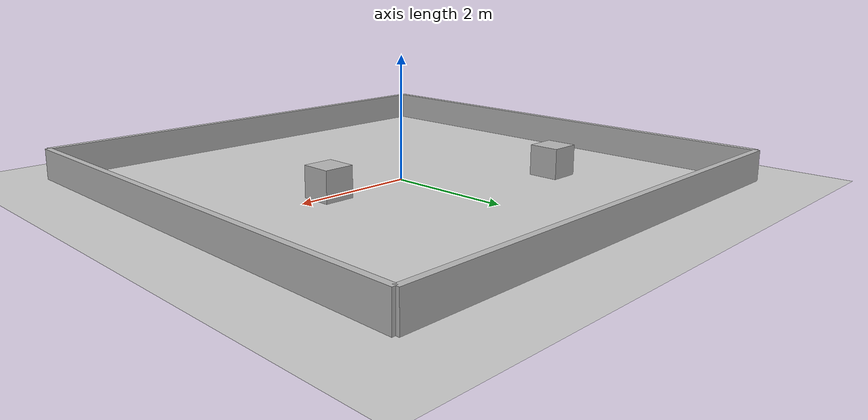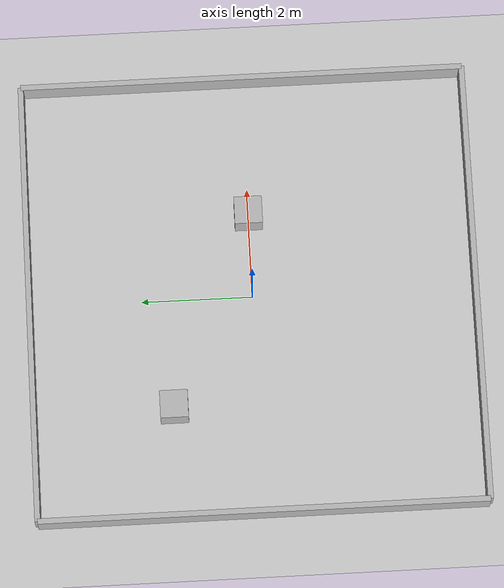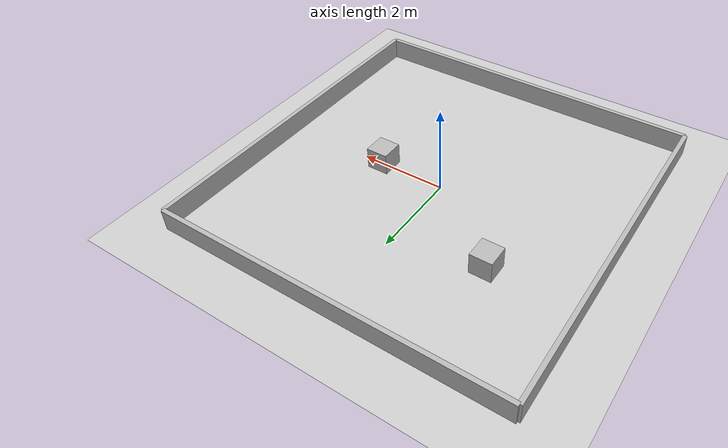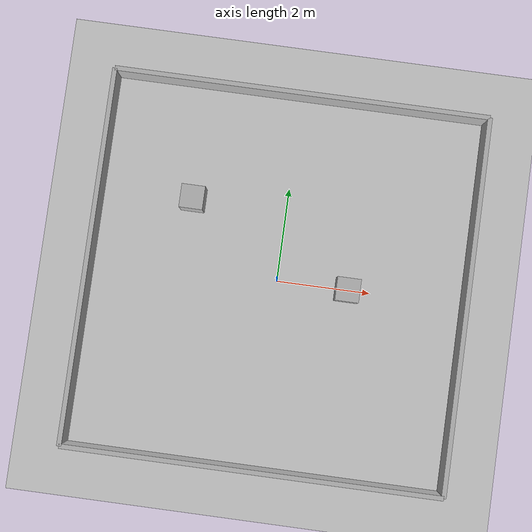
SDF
<?xml version="1.0" ?>
<sdf version="1.7">
  <world name="turtlebot3_world">
    <physics type="ode">
      <max_step_size>0.001</max_step_size>
      <real_time_factor>1.0</real_time_factor>
      <real_time_update_rate>1000</real_time_update_rate>
    </physics>

    <scene>
      <ambient>0.4 0.4 0.4 1</ambient>
      <background>0.7 0.7 0.7 1</background>
      <shadows>false</shadows>
    </scene>

    <include><uri>model://sun</uri></include>
    <include><uri>model://ground_plane</uri></include>

    <model name="wall_north">
      <static>true</static>
      <pose>0 4 0.25 0 0 0</pose>
      <link name="link">
        <collision name="collision"><geometry><box><size>8 0.1 0.5</size></box></geometry></collision>
        <visual name="visual"><geometry><box><size>8 0.1 0.5</size></box></geometry></visual>
      </link>
    </model>

    <model name="wall_south">
      <static>true</static>
      <pose>0 -4 0.25 0 0 0</pose>
      <link name="link">
        <collision name="collision"><geometry><box><size>8 0.1 0.5</size></box></geometry></collision>
        <visual name="visual"><geometry><box><size>8 0.1 0.5</size></box></geometry></visual>
      </link>
    </model>

    <model name="wall_east">
      <static>true</static>
      <pose>4 0 0.25 0 0 0</pose>
      <link name="link">
        <collision name="collision"><geometry><box><size>0.1 8 0.5</size></box></geometry></collision>
        <visual name="visual"><geometry><box><size>0.1 8 0.5</size></box></geometry></visual>
      </link>
    </model>

    <model name="wall_west">
      <static>true</static>
      <pose>-4 0 0.25 0 0 0</pose>
      <link name="link">
        <collision name="collision"><geometry><box><size>0.1 8 0.5</size></box></geometry></collision>
        <visual name="visual"><geometry><box><size>0.1 8 0.5</size></box></geometry></visual>
      </link>
    </model>

    <model name="obstacle_box_1">
      <static>true</static>
      <pose>1.5 0.0 0.25 0 0 0</pose>
      <link name="link">
        <collision name="collision"><geometry><box><size>0.5 0.5 0.5</size></box></geometry></collision>
        <visual name="visual"><geometry><box><size>0.5 0.5 0.5</size></box></geometry></visual>
      </link>
    </model>

    <model name="obstacle_box_2">
      <static>true</static>
      <pose>-2.0 1.5 0.25 0 0 0</pose>
      <link name="link">
        <collision name="collision"><geometry><box><size>0.5 0.5 0.5</size></box></geometry></collision>
        <visual name="visual"><geometry><box><size>0.5 0.5 0.5</size></box></geometry></visual>
      </link>
    </model>
  </world>
</sdf>
